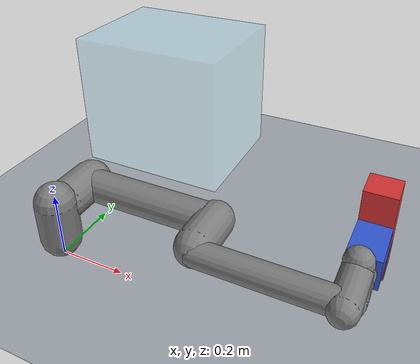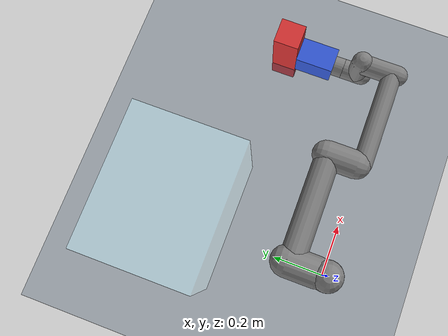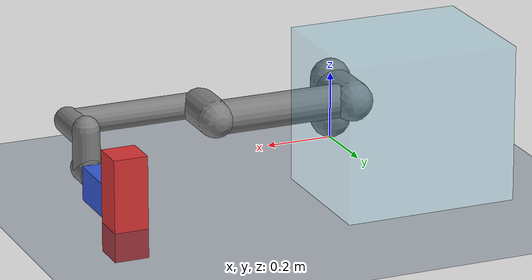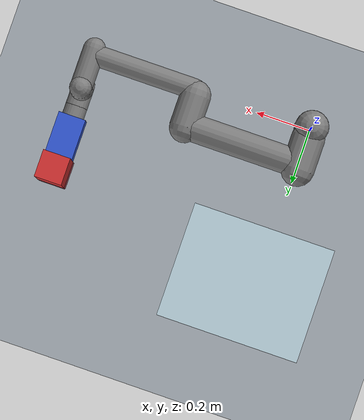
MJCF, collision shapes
<mujoco model="ur5e scene with box">
  <include file="ur5e_with_box.xml"/>

  <statistic center="0.0 -0.1 0.62" extent="1.85"/>

  <visual>
    <headlight diffuse="0.6 0.6 0.6" ambient="0.1 0.1 0.1" specular="0 0 0"/>
    <rgba haze="0.15 0.25 0.35 1"/>
    <global azimuth="120" elevation="-20"/>
  </visual>

  <asset>
    <texture type="skybox" builtin="gradient" rgb1="0.3 0.5 0.7" rgb2="0 0 0" width="512" height="3072"/>
    <texture type="2d" name="groundplane" builtin="checker" mark="edge" rgb1="0.2 0.3 0.4" rgb2="0.1 0.2 0.3"
      markrgb="0.8 0.8 0.8" width="300" height="300"/>
    <material name="groundplane" texture="groundplane" texuniform="true" texrepeat="5 5" reflectance="0.2"/>
  </asset>

  <worldbody>
    <light pos="0 0 1.5" dir="0 0 -1" directional="true"/>
    <camera name="payload_overview" pos="1.032 -0.642 1.092" xyaxes="0.707 0.707 0.000 -0.314 0.314 0.896" fovy="50"/>
    <camera name="workspace_overview" pos="2.35 -2.05 1.7" xyaxes="0.67 0.74 0.00 -0.29 0.26 0.92" fovy="62"/>
    <camera name="view_x" pos="1.197 0.391 0.369" xyaxes="0 1 0 0 0 1" fovy="50"/>
    <camera name="view_y" pos="0.000 1.588 0.369" xyaxes="-1 0 0 0 0 1" fovy="50"/>
    <camera name="view_z" pos="0.000 0.391 1.851" xyaxes="-1 0 0 0 -1 0" fovy="50"/>
    <geom name="floor" size="0 0 0.05" type="plane" material="groundplane"/>
  </worldbody>
</mujoco>

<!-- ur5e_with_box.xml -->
<mujoco model="ur5e_with_box">
  <compiler angle="radian" meshdir="assets" autolimits="true"/>

  <option integrator="implicitfast"/>

  <default>
    <default class="ur5e">
      <material specular="0.5" shininess="0.25"/>
      <joint axis="0 1 0" range="-6.28319 6.28319" armature="0.1"/>
      <general gaintype="fixed" biastype="affine" ctrlrange="-6.2831 6.2831" gainprm="2000" biasprm="0 -2000 -400"
        forcerange="-150 150"/>
      <default class="size3">
        <default class="size3_limited">
          <joint range="-3.1415 3.1415"/>
          <general ctrlrange="-3.1415 3.1415"/>
        </default>
      </default>
      <default class="size1">
        <general gainprm="500" biasprm="0 -500 -100" forcerange="-28 28"/>
      </default>
      <default class="visual">
        <geom type="mesh" contype="0" conaffinity="0" group="2"/>
      </default>
      <default class="collision">
        <geom type="capsule" group="3"/>
        <default class="eef_collision">
          <geom type="cylinder"/>
        </default>
      </default>
      <site size="0.001" rgba="0.5 0.5 0.5 0.3" group="4"/>
    </default>
  </default>

  <asset>
    <material class="ur5e" name="black" rgba="0.033 0.033 0.033 1"/>
    <material class="ur5e" name="jointgray" rgba="0.278 0.278 0.278 1"/>
    <material class="ur5e" name="linkgray" rgba="0.82 0.82 0.82 1"/>
    <material class="ur5e" name="urblue" rgba="0.49 0.678 0.8 1"/>
    <material name="payload_box_material" rgba="0.85 0.45 0.2 1" specular="0.3" shininess="0.2"/>
    <material name="payload_red_material" rgba="0.85 0.2 0.2 1" specular="0.3" shininess="0.2"/>
    <material name="payload_blue_material" rgba="0.2 0.35 0.85 1" specular="0.3" shininess="0.2"/>
    <material name="workspace_region_material" rgba="0.2 0.7 0.9 0.18" specular="0.1" shininess="0.1"/>

    <mesh file="base_0.obj"/>
    <mesh file="base_1.obj"/>
    <mesh file="shoulder_0.obj"/>
    <mesh file="shoulder_1.obj"/>
    <mesh file="shoulder_2.obj"/>
    <mesh file="upperarm_0.obj"/>
    <mesh file="upperarm_1.obj"/>
    <mesh file="upperarm_2.obj"/>
    <mesh file="upperarm_3.obj"/>
    <mesh file="forearm_0.obj"/>
    <mesh file="forearm_1.obj"/>
    <mesh file="forearm_2.obj"/>
    <mesh file="forearm_3.obj"/>
    <mesh file="wrist1_0.obj"/>
    <mesh file="wrist1_1.obj"/>
    <mesh file="wrist1_2.obj"/>
    <mesh file="wrist2_0.obj"/>
    <mesh file="wrist2_1.obj"/>
    <mesh file="wrist2_2.obj"/>
    <mesh file="wrist3.obj"/>
  </asset>

  <worldbody>
    <light name="spotlight" mode="targetbodycom" target="wrist_2_link" pos="0 -1 2"/>
    <body name="base" quat="1 0 0 0" childclass="ur5e">
      <inertial mass="4.0" pos="0 0 0" diaginertia="0.00443333156 0.00443333156 0.0072"/>
      <geom mesh="base_0" material="black" class="visual"/>
      <geom mesh="base_1" material="jointgray" class="visual"/>
      <body name="workspace_region" pos="0.05 0.6 0.275">
        <geom name="workspace_region_geom" type="box" size="0.25 0.2 0.225" material="workspace_region_material"
          contype="0" conaffinity="0" density="0"/>
      </body>
      <body name="shoulder_link" pos="0 0 0.163">
        <inertial mass="3.7" pos="0 0 0" diaginertia="0.0102675 0.0102675 0.00666"/>
        <joint name="shoulder_pan_joint" class="size3" axis="0 0 1"/>
        <geom mesh="shoulder_0" material="urblue" class="visual"/>
        <geom mesh="shoulder_1" material="black" class="visual"/>
        <geom mesh="shoulder_2" material="jointgray" class="visual"/>
        <geom class="collision" size="0.06 0.06" pos="0 0 -0.04"/>
        <body name="upper_arm_link" pos="0 0.138 0" quat="1 0 1 0">
          <inertial mass="8.393" pos="0 0 0.2125" diaginertia="0.133886 0.133886 0.0151074"/>
          <joint name="shoulder_lift_joint" class="size3"/>
          <geom mesh="upperarm_0" material="linkgray" class="visual"/>
          <geom mesh="upperarm_1" material="black" class="visual"/>
          <geom mesh="upperarm_2" material="jointgray" class="visual"/>
          <geom mesh="upperarm_3" material="urblue" class="visual"/>
          <geom class="collision" pos="0 -0.04 0" quat="1 1 0 0" size="0.06 0.06"/>
          <geom class="collision" size="0.05 0.2" pos="0 0 0.2"/>
          <body name="forearm_link" pos="0 -0.131 0.425">
            <inertial mass="2.275" pos="0 0 0.196" diaginertia="0.0311796 0.0311796 0.004095"/>
            <joint name="elbow_joint" class="size3_limited"/>
            <geom mesh="forearm_0" material="urblue" class="visual"/>
            <geom mesh="forearm_1" material="linkgray" class="visual"/>
            <geom mesh="forearm_2" material="black" class="visual"/>
            <geom mesh="forearm_3" material="jointgray" class="visual"/>
            <geom class="collision" pos="0 0.08 0" quat="1 1 0 0" size="0.055 0.06"/>
            <geom class="collision" size="0.038 0.19" pos="0 0 0.2"/>
            <body name="wrist_1_link" pos="0 0 0.392" quat="1 0 1 0">
              <inertial mass="1.219" pos="0 0.127 0" diaginertia="0.0025599 0.0025599 0.0021942"/>
              <joint name="wrist_1_joint" class="size1"/>
              <geom mesh="wrist1_0" material="black" class="visual"/>
              <geom mesh="wrist1_1" material="urblue" class="visual"/>
              <geom mesh="wrist1_2" material="jointgray" class="visual"/>
              <geom class="collision" pos="0 0.05 0" quat="1 1 0 0" size="0.04 0.07"/>
              <body name="wrist_2_link" pos="0 0.127 0">
                <inertial mass="1.219" pos="0 0 0.1" diaginertia="0.0025599 0.0025599 0.0021942"/>
                <joint name="wrist_2_joint" axis="0 0 1" class="size1"/>
                <geom mesh="wrist2_0" material="black" class="visual"/>
                <geom mesh="wrist2_1" material="urblue" class="visual"/>
                <geom mesh="wrist2_2" material="jointgray" class="visual"/>
                <geom class="collision" size="0.04 0.06" pos="0 0 0.04"/>
                <geom class="collision" pos="0 0.02 0.1" quat="1 1 0 0" size="0.04 0.04"/>
                <body name="wrist_3_link" pos="0 0 0.1">
                  <inertial mass="0.1889" pos="0 0.0771683 0" quat="1 0 0 1"
                    diaginertia="0.000132134 9.90863e-05 9.90863e-05"/>
                  <joint name="wrist_3_joint" class="size1"/>
                  <geom material="linkgray" mesh="wrist3" class="visual"/>
                  <geom class="eef_collision" pos="0 0.08 0" quat="1 1 0 0" size="0.04 0.02"/>
                  <site name="attachment_site" pos="0 0.1 0" quat="-1 1 0 0"/>
                  <body name="payload_box_mount" pos="0 0.1 0" quat="-1 1 0 0">
                    <body name="payload_blue_body" pos="0 0 0">
                      <geom name="payload_box_blue" type="box" pos="0 0 0.075" size="0.05 0.05 0.075" material="payload_blue_material" density="200"/>
                      <body name="payload_red_body" pos="0 0 0.15">
                        <geom name="payload_box_red" type="box" pos="0 0 0.05" size="0.05 0.15 0.05" material="payload_red_material" density="200"/>
                      </body>
                    </body>
                    <site name="ft_sensor" pos="0 0 0" size="0.01"/>
                  </body>
                </body>
              </body>
            </body>
          </body>
        </body>
      </body>
    </body>
  </worldbody>

  <actuator>
    <general class="size3" name="shoulder_pan" joint="shoulder_pan_joint"/>
    <general class="size3" name="shoulder_lift" joint="shoulder_lift_joint"/>
    <general class="size3_limited" name="elbow" joint="elbow_joint"/>
    <general class="size1" name="wrist_1" joint="wrist_1_joint"/>
    <general class="size1" name="wrist_2" joint="wrist_2_joint"/>
    <general class="size1" name="wrist_3" joint="wrist_3_joint"/>
  </actuator>

  <sensor>
    <force name="ft_force" site="ft_sensor"/>
    <torque name="ft_torque" site="ft_sensor"/>
  </sensor>

  <keyframe>
    <key name="home" qpos="1.263214 -1.345398 1.351137 -1.576535 -1.570796 -1.570796" ctrl="1.263214 -1.345398 1.351137 -1.576535 -1.570796 -1.570796"/>
  </keyframe>
</mujoco>
